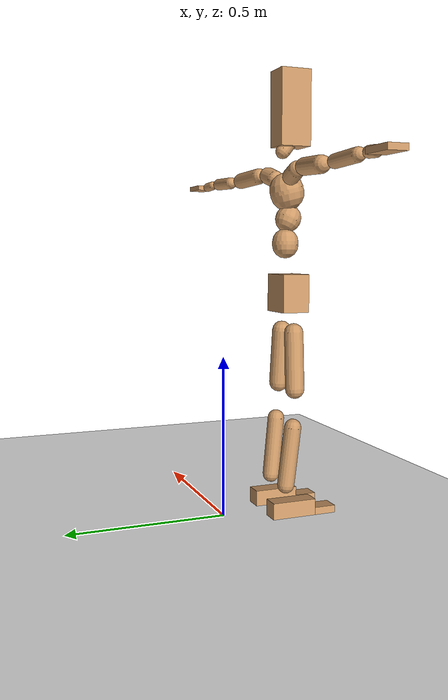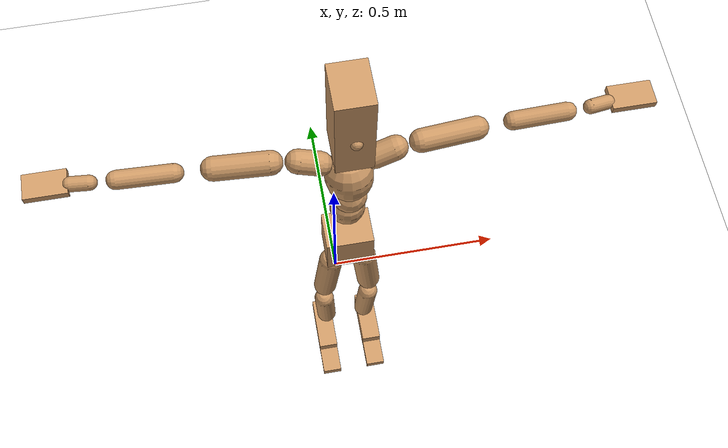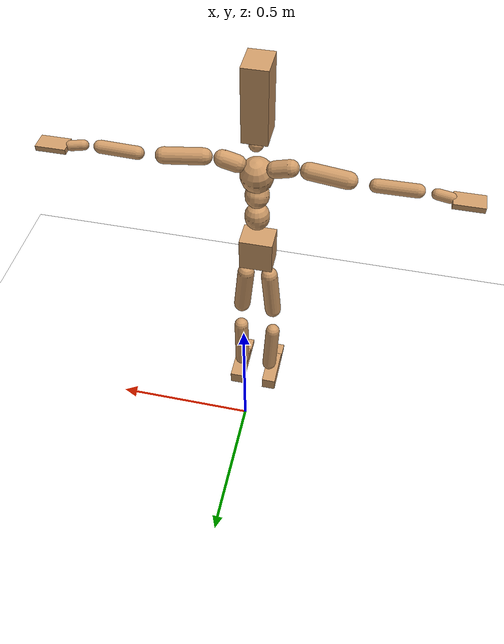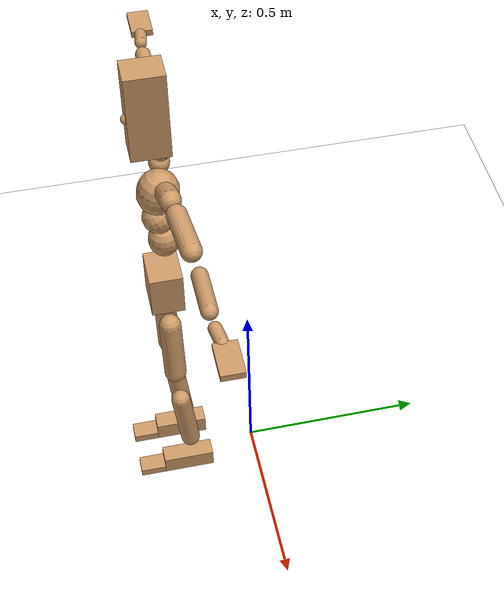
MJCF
<mujoco model="humanoid">
  <option integrator="implicitfast" />

  <visual>
    <global offwidth="1280" offheight="960" />
    <headlight active="1" ambient="0.34 0.34 0.34" diffuse="0.5 0.5 0.5" />
  </visual>

  <default>
    <joint damping="2" stiffness="2" armature="0.01" limited="true" solimplimit="0 .99 .01" />
    <geom condim="1" friction="0.7 0.005 0.0001" solimp=".99 .99 .003" solref="0.015 1" margin="0.001" rgba="0.8 0.6 .4 1" />
    <default class="smplcontact">
      <geom condim="3" friction="1. 0.005 0.0001" solref="0.015 1" solimp="0.98 0.98 0.001" priority="1" />
    </default>
    <default class="stiff_medium">
      <joint stiffness="10" />
    </default>
    <default class="stiff_medium_higher">
      <joint stiffness="50" />
    </default>
    <default class="stiff_high">
      <joint stiffness="100" />
    </default>
  </default>

  <asset>
    <texture type="skybox" builtin="gradient" rgb1="0.99 0.99 0.99" rgb2="0.608 0.828 0.892" width="100" />
    <texture builtin="flat" height="1278" mark="cross" markrgb="1 1 1" name="texgeom" random="0.01" rgb1="0.8 0.6 0.4" rgb2="0.8 0.6 0.4" type="cube" width="127" />
    <texture name="texplane" type="2d" builtin="checker" markrgb="1 1 1" rgb1="0.756 0.772 0.76" rgb2="0.6 0.6 0.6" width="100" height="100" />
    <material name="MatPlane" reflectance="0.5" texture="texplane" texrepeat="1 1" texuniform="true" />
    <material name="geom" texture="texgeom" texuniform="true" />
  </asset>

  <worldbody>
    <light name="tracking_light" pos="0 0 7" dir="0 0 -1" directional="true" cutoff="100" exponent="1" diffuse="1 1 1" specular="0.1 0.1 0.1" mode="trackcom" />
    <camera name="back" pos="0 3 2.4" xyaxes="-1 0 0 0 -1 2" mode="trackcom" />
    <camera name="side" pos="-3 0 2.4" xyaxes="0 -1 0 1 0 2" mode="trackcom" />
    <camera name="front_side" pos="-2.8 -2.8 0.8" xyaxes="0.5 -0.5 0 0.1 0.1 1" mode="trackcom" />
    <geom condim="3" name="floor" pos="0 0 0" rgba="1 1 1 1" size="100 100 .2" type="plane" material="MatPlane" />
    <body name="Pelvis" pos="-0.0018 -0.2233 0.707498" euler="90 0 0">
      <site name="Pelvis" size="0.01" />
      <freejoint name="Pelvis" />
      <geom type="box" pos="0 -0.0100444 -0.0029271" size="0.0568922 0.0599345 0.0441726" quat="1.0000 0.0000 0.0000 0.0000" density="3165.830099" name="Pelvis" />
      <body name="L_Hip" pos="0.0369879 -0.0758727 -0.00361896">
        <joint name="L_Hip_x" type="hinge" pos="0 0 0" axis="1 0 0" stiffness="10" range="-160.0 22.92" class="stiff_medium" damping="15" />
        <joint name="L_Hip_y" type="hinge" pos="0 0 0" axis="0 1 0" stiffness="10" range="-70.0 70.0" class="stiff_medium" damping="10" />
        <joint name="L_Hip_z" type="hinge" pos="0 0 0" axis="0 0 1" stiffness="10" range="-28.65 90.0" class="stiff_medium" damping="10" />
        <geom type="capsule" density="2040.816327" fromto="0.00526045 -0.0573959 -0.000688531 0.0209482 -0.229731 -0.00275472" size="0.0301781" name="L_Hip" />
        <body name="L_Knee" pos="0.0262086 -0.287127 -0.00344325">
          <joint name="L_Knee_x" type="hinge" pos="0 0 0" axis="1 0 0" range="-5.16 171.89" damping="8" />
          <joint name="L_Knee_y" type="hinge" pos="0 0 0" axis="0 1 0" range="-4.58 6.88" damping="8" />
          <joint name="L_Knee_z" type="hinge" pos="0 0 0" axis="0 0 1" range="-6.88 4.58" damping="8" />
          <geom type="capsule" density="1234.567901" fromto="-0.00207526 -0.0609119 -0.00667576 -0.00835034 -0.243655 -0.026802" size="0.0265469" name="L_Knee" />
          <body name="L_Ankle" pos="-0.0104256 -0.304567 -0.0334777">
            <joint name="L_Ankle_x" type="hinge" pos="0 0 0" axis="1 0 0" range="-45.84 45.84" class="stiff_medium" damping="6" />
            <joint name="L_Ankle_y" type="hinge" pos="0 0 0" axis="0 1 0" range="-74.48 22.92" class="stiff_medium" damping="3" />
            <joint name="L_Ankle_z" type="hinge" pos="0 0 0" axis="0 0 1" range="-4.58 4.58" class="stiff_medium" damping="6" />
            <geom type="box" pos="0.0124003 -0.0127196 0.0201893" size="0.0257053 0.0246941 0.0709127" quat="1.0000 0.0000 0.0000 0.0000" density="449.071558" name="L_Ankle" class="smplcontact" />
            <body name="L_Toe" pos="0.0140501 -0.0296968 0.099528">
              <joint name="L_Toe_x" type="hinge" pos="0 0 0" axis="1 0 0" range="-91.67 22.92" />
              <joint name="L_Toe_y" type="hinge" pos="0 0 0" axis="0 1 0" range="-4.58 4.58" />
              <joint name="L_Toe_z" type="hinge" pos="0 0 0" axis="0 0 1" range="-4.58 4.58" />
              <geom type="box" pos="-0.0015966 0.0029271 0.0206898" size="0.0254392 0.010644 0.0413796" quat="1.0000 0.0000 0.0000 0.0000" density="423.206892" name="L_Toe" class="smplcontact" />
            </body>
          </body>
        </body>
      </body>
      <body name="R_Hip" pos="-0.0360299 -0.0751256 -0.00228846">
        <joint name="R_Hip_x" type="hinge" pos="0 0 0" axis="1 0 0" stiffness="10" range="-160.0 22.92" class="stiff_medium" damping="15" />
        <joint name="R_Hip_y" type="hinge" pos="0 0 0" axis="0 1 0" stiffness="10" range="-70.0 70.0" class="stiff_medium" damping="10" />
        <joint name="R_Hip_z" type="hinge" pos="0 0 0" axis="0 0 1" stiffness="10" range="-90.0 28.65" class="stiff_medium" damping="10" />
        <geom type="capsule" density="2040.816327" fromto="-0.00587345 -0.0585441 -0.00136814 -0.0233978 -0.234246 -0.00542399" size="0.0297364" name="R_Hip" />
        <body name="R_Knee" pos="-0.0292712 -0.292791 -0.00679213">
          <joint name="R_Knee_x" type="hinge" pos="0 0 0" axis="1 0 0" range="-5.16 171.89" damping="8" />
          <joint name="R_Knee_y" type="hinge" pos="0 0 0" axis="0 1 0" range="-6.88 4.58" damping="8" />
          <joint name="R_Knee_z" type="hinge" pos="0 0 0" axis="0 0 1" range="-4.58 6.88" damping="8" />
          <geom type="capsule" density="1234.567901" fromto="0.00243097 -0.0609933 -0.00648759 0.00962436 -0.243889 -0.0258485" size="0.0265469" name="R_Knee" />
          <body name="R_Ankle" pos="0.0120553 -0.304882 -0.0323361">
            <joint name="R_Ankle_x" type="hinge" pos="0 0 0" axis="1 0 0" range="-45.84 45.84" class="stiff_medium" damping="6" />
            <joint name="R_Ankle_y" type="hinge" pos="0 0 0" axis="0 1 0" range="-22.92 74.48" class="stiff_medium" damping="3" />
            <joint name="R_Ankle_z" type="hinge" pos="0 0 0" axis="0 0 1" range="-4.58 4.58" class="stiff_medium" damping="6" />
            <geom type="box" pos="-0.0112826 -0.00926028 0.0213572" size="0.0257053 0.0254392 0.0721641" quat="1.0000 0.0000 0.0000 0.0000" density="434.700981" name="R_Ankle" class="smplcontact" />
            <body name="R_Toe" pos="-0.0135179 -0.0255988 0.102865">
              <joint name="R_Toe_x" type="hinge" pos="0 0 0" axis="1 0 0" range="-91.67 22.92" />
              <joint name="R_Toe_y" type="hinge" pos="0 0 0" axis="0 1 0" range="-4.58 4.58" />
              <joint name="R_Toe_z" type="hinge" pos="0 0 0" axis="0 0 1" range="-4.58 4.58" />
              <geom type="box" pos="0.00223524 0.0023949 0.0189379" size="0.0254924 0.0114955 0.0411294" quat="1.0000 0.0000 0.0000 0.0000" density="407.384095" name="R_Toe" class="smplcontact" />
            </body>
          </body>
        </body>
      </body>
      <body name="Torso" pos="-0.0013305 0.0904828 -0.0142097">
        <joint name="Torso_x" type="hinge" pos="0 0 0" axis="1 0 0" range="-25.78 57.3" class="stiff_medium" damping="15" />
        <joint name="Torso_y" type="hinge" pos="0 0 0" axis="0 1 0" range="-57.3 57.3" class="stiff_high" damping="20" />
        <joint name="Torso_z" type="hinge" pos="0 0 0" axis="0 0 1" range="-34.38 34.38" class="stiff_high" damping="20" />
        <geom type="capsule" density="2040.816327" fromto="0.00201358 0.0507794 0.000402715 0.00243115 0.0620538 0.00048623" size="0.0411723" name="Torso" />
        <body name="Spine" pos="0.00444583 0.112917 0.000889167">
          <joint name="Spine_x" type="hinge" pos="0 0 0" axis="1 0 0" stiffness="10" range="-25.78 57.3" class="stiff_medium" damping="15" />
          <joint name="Spine_y" type="hinge" pos="0 0 0" axis="0 1 0" stiffness="10" range="-57.3 57.3" class="stiff_high" damping="8" />
          <joint name="Spine_z" type="hinge" pos="0 0 0" axis="0 0 1" stiffness="20" range="-34.38 34.38" class="stiff_high" damping="12" />
          <geom type="capsule" density="2040.816327" fromto="0.000508786 0.0198448 0.00958772 0.0005923 0.0242711 0.0117591" size="0.0404227" name="Spine" />
          <body name="Chest" pos="0.00110109 0.0441159 0.0213468">
            <joint name="Chest_x" type="hinge" pos="0 0 0" axis="1 0 0" stiffness="10" range="-25.78 57.3" class="stiff_medium" damping="15" />
            <joint name="Chest_y" type="hinge" pos="0 0 0" axis="0 1 0" stiffness="10" range="-57.3 57.3" class="stiff_high" damping="8" />
            <joint name="Chest_z" type="hinge" pos="0 0 0" axis="0 0 1" stiffness="20" range="-34.38 34.38" class="stiff_high" damping="12" />
            <geom type="capsule" density="2040.816327" fromto="-0.000617094 0.0569346 -0.0145365 -0.000700608 0.0695452 -0.0177936" size="0.0536471" name="Chest" />
            <body name="Neck" pos="-0.0019178 0.177743 -0.0392973">
              <joint name="Neck_x" type="hinge" pos="0 0 0" axis="1 0 0" range="-28.65 57.3" class="stiff_medium_higher" damping="10" />
              <joint name="Neck_y" type="hinge" pos="0 0 0" axis="0 1 0" range="-40.11 40.11" class="stiff_medium_higher" damping="10" />
              <joint name="Neck_z" type="hinge" pos="0 0 0" axis="0 0 1" range="-40.11 40.11" class="stiff_medium_higher" damping="10" />
              <geom type="capsule" density="1000" fromto="0.000844591 0.0108498 0.0085864 0.00343082 0.0433862 0.0342818" size="0.0233216" name="Neck" />
              <body name="Head" pos="0.00432786 0.054223 0.0428044">
                <joint name="Head_x" type="hinge" pos="0 0 0" axis="1 0 0" range="-28.65 57.3" class="stiff_medium_higher" damping="2" />
                <joint name="Head_y" type="hinge" pos="0 0 0" axis="0 1 0" range="-40.11 40.11" class="stiff_medium_higher" damping="2" />
                <joint name="Head_z" type="hinge" pos="0 0 0" axis="0 0 1" range="-40.11 40.11" class="stiff_medium_higher" damping="2" />
                <geom type="box" pos="-0.00279678 0.0909887 -0.00772444" size="0.0403535 0.119864 0.0506084" quat="1.0000 0.0000 0.0000 0.0000" density="1018.069894" name="Head" />
                <geom type="capsule" name="nose" size="0.013318 0.006659" pos="0 0.0727079 0.033295" quat="1 0 0 0" mass="0" contype="0" conaffinity="0" />
              </body>
            </body>
            <body name="L_Thorax" pos="0.0419476 0.101682 -0.0276905">
              <joint name="L_Thorax_x" type="hinge" pos="0 0 0" axis="1 0 0" range="-10.89 4.58" class="stiff_medium_higher" damping="20" />
              <joint name="L_Thorax_y" type="hinge" pos="0 0 0" axis="0 1 0" range="-28.65 17.19" class="stiff_medium_higher" damping="20" />
              <joint name="L_Thorax_z" type="hinge" pos="0 0 0" axis="0 0 1" range="-31.51 40.11" class="stiff_medium_higher" damping="20" />
              <geom type="capsule" density="1000" fromto="0.0150176 0.00503336 -0.00147538 0.0600677 0.0201326 -0.00584838" size="0.0275609" name="L_Thorax" />
              <body name="L_Shoulder" pos="0.0750853 0.025166 -0.00732377">
                <joint name="L_Shoulder_x" type="hinge" pos="0 0 0" axis="1 0 0" range="-97.4 97.4" class="stiff_medium" damping="6" />
                <joint name="L_Shoulder_y" type="hinge" pos="0 0 0" axis="0 1 0" range="-108.86 80.21" class="stiff_medium" damping="6" />
                <joint name="L_Shoulder_z" type="hinge" pos="0 0 0" axis="0 0 1" range="-97.4 85.94" class="stiff_medium" damping="6" />
                <geom type="capsule" density="1000" fromto="0.0411799 -0.00204352 -0.00436295 0.164796 -0.00807356 -0.0174545" size="0.0262998" name="L_Shoulder" />
                <body name="L_Elbow" pos="0.205976 -0.0101171 -0.0218175">
                  <joint name="L_Elbow_x" type="hinge" pos="0 0 0" axis="1 0 0" range="-17.19 4.58" damping="5" />
                  <joint name="L_Elbow_y" type="hinge" pos="0 0 0" axis="0 1 0" range="-180.0 17.19" damping="5" />
                  <joint name="L_Elbow_z" type="hinge" pos="0 0 0" axis="0 0 1" range="-100.84 4.58" damping="5" />
                  <geom type="capsule" density="1000" fromto="0.0395127 0.00142748 -0.000168087 0.158209 0.00571199 -0.000723486" size="0.0206024" name="L_Elbow" />
                  <body name="L_Wrist" pos="0.197722 0.00713948 -0.000942445">
                    <joint name="L_Wrist_x" type="hinge" pos="0 0 0" axis="1 0 0" range="-180.0 22.92" />
                    <joint name="L_Wrist_y" type="hinge" pos="0 0 0" axis="0 1 0" range="-17.19 17.19" />
                    <joint name="L_Wrist_z" type="hinge" pos="0 0 0" axis="0 0 1" range="-22.92 22.92" />
                    <geom type="capsule" density="1000" fromto="0.0133287 -0.00127889 -0.00238012 0.0533174 -0.00516668 -0.00952097" size="0.0161767" name="L_Wrist" class="smplcontact" />
                    <body name="L_Hand" pos="0.0666439 -0.00649622 -0.0118498">
                      <joint name="L_Hand_x" type="hinge" pos="0 0 0" axis="1 0 0" range="-17.19 17.19" />
                      <joint name="L_Hand_y" type="hinge" pos="0 0 0" axis="0 1 0" range="-51.57 51.57" />
                      <joint name="L_Hand_z" type="hinge" pos="0 0 0" axis="0 0 1" range="-91.67 91.67" />
                      <geom type="box" pos="0.0409248 0.0005322 -0.00308676" size="0.0485619 0.00840876 0.0286324" quat="1.0000 0.0000 0.0000 0.0000" density="400.552564" name="L_Hand" class="smplcontact" />
                    </body>
                  </body>
                </body>
              </body>
            </body>
            <body name="R_Thorax" pos="-0.0440363 0.09994 -0.0300508">
              <joint name="R_Thorax_x" type="hinge" pos="0 0 0" axis="1 0 0" range="-10.89 4.58" class="stiff_medium_higher" damping="20" />
              <joint name="R_Thorax_y" type="hinge" pos="0 0 0" axis="0 1 0" range="-17.19 28.65" class="stiff_medium_higher" damping="20" />
              <joint name="R_Thorax_z" type="hinge" pos="0 0 0" axis="0 0 1" range="-40.11 31.51" class="stiff_medium_higher" damping="20" />
              <geom type="capsule" density="1000" fromto="-0.015841 0.00536283 -0.00149496 -0.0633664 0.0214522 -0.00603298" size="0.0270319" name="R_Thorax" />
              <body name="R_Shoulder" pos="-0.0792163 0.0268709 -0.00752879">
                <joint name="R_Shoulder_x" type="hinge" pos="0 0 0" axis="1 0 0" range="-97.4 97.4" class="stiff_medium" damping="6" />
                <joint name="R_Shoulder_y" type="hinge" pos="0 0 0" axis="0 1 0" range="-80.21 108.86" class="stiff_medium" damping="6" />
                <joint name="R_Shoulder_z" type="hinge" pos="0 0 0" axis="0 0 1" range="-85.94 97.4" class="stiff_medium" damping="6" />
                <geom type="capsule" density="1000" fromto="-0.0402282 -0.00213184 -0.00340077 -0.161067 -0.00847926 -0.0135566" size="0.027012" name="R_Shoulder" />
                <body name="R_Elbow" pos="-0.201294 -0.0105602 -0.0169573">
                  <joint name="R_Elbow_x" type="hinge" pos="0 0 0" axis="1 0 0" range="-17.19 4.58" damping="5" />
                  <joint name="R_Elbow_y" type="hinge" pos="0 0 0" axis="0 1 0" range="-17.19 180.0" damping="5" />
                  <joint name="R_Elbow_z" type="hinge" pos="0 0 0" axis="0 0 1" range="-4.58 100.84" damping="5" />
                  <geom type="capsule" density="1000" fromto="-0.0405447 0.00125109 -0.000873191 -0.162018 0.00490085 -0.0034915" size="0.020755" name="R_Elbow" />
                  <body name="R_Wrist" pos="-0.202564 0.00615196 -0.00441557">
                    <joint name="R_Wrist_x" type="hinge" pos="0 0 0" axis="1 0 0" range="-180.0 22.92" />
                    <joint name="R_Wrist_y" type="hinge" pos="0 0 0" axis="0 1 0" range="-17.19 17.19" />
                    <joint name="R_Wrist_z" type="hinge" pos="0 0 0" axis="0 0 1" range="-22.92 22.92" />
                    <geom type="capsule" density="1000" fromto="-0.0134096 -0.000960959 -0.00165563 -0.0537157 -0.00389664 -0.00657488" size="0.0165836" name="R_Wrist" class="smplcontact" />
                    <body name="R_Hand" pos="-0.0671218 -0.00485735 -0.00817922">
                      <joint name="R_Hand_x" type="hinge" pos="0 0 0" axis="1 0 0" range="-17.19 17.19" />
                      <joint name="R_Hand_y" type="hinge" pos="0 0 0" axis="0 1 0" range="-51.57 51.57" />
                      <joint name="R_Hand_z" type="hinge" pos="0 0 0" axis="0 0 1" range="-91.67 91.67" />
                      <geom type="box" pos="-0.0383514 -0.00047898 -0.00420438" size="0.0472337 0.00872808 0.0290581" quat="1.0000 0.0000 0.0000 0.0000" density="403.679611" name="R_Hand" class="smplcontact" />
                    </body>
                  </body>
                </body>
              </body>
            </body>
          </body>
        </body>
      </body>
    </body>
  </worldbody>
  <actuator>
    <general name="L_Hip_x" joint="L_Hip_x" biastype="affine" gainprm="287.33006409732246" biasprm="-215.3247604770444 -180 -2.0" ctrllimited="true" ctrlrange="-1 1" forcerange="-360 360" />
    <general name="L_Hip_y" joint="L_Hip_y" biastype="affine" gainprm="219.9114857512855" biasprm="0.0 -180 -2.0" ctrllimited="true" ctrlrange="-1 1" forcerange="-360 360" />
    <general name="L_Hip_z" joint="L_Hip_z" biastype="affine" gainprm="186.3749841742145" biasprm="96.3683546488669 -180 -2.0" ctrllimited="true" ctrlrange="-1 1" forcerange="-360 360" />
    <general name="L_Knee_x" joint="L_Knee_x" biastype="affine" gainprm="278.10948965903646" biasprm="261.8988715665131 -180 -2.0" ctrllimited="true" ctrlrange="-1 1" forcerange="-360 360" />
    <general name="L_Knee_y" joint="L_Knee_y" biastype="affine" gainprm="18.001325905069514" biasprm="3.612831551628262 -180 -2.0" ctrllimited="true" ctrlrange="-1 1" forcerange="-360 360" />
    <general name="L_Knee_z" joint="L_Knee_z" biastype="affine" gainprm="18.001325905069514" biasprm="-3.612831551628262 -180 -2.0" ctrllimited="true" ctrlrange="-1 1" forcerange="-360 360" />
    <general name="L_Ankle_x" joint="L_Ankle_x" biastype="affine" gainprm="72.00530362027807" biasprm="0.0 -90 -2.0" ctrllimited="true" ctrlrange="-1 1" forcerange="-180 180" />
    <general name="L_Ankle_y" joint="L_Ankle_y" biastype="affine" gainprm="76.49778111491148" biasprm="-40.49512930477244 -90 -2.0" ctrllimited="true" ctrlrange="-1 1" forcerange="-180 180" />
    <general name="L_Ankle_z" joint="L_Ankle_z" biastype="affine" gainprm="7.1942471767206255" biasprm="0.0 -90 -2.0" ctrllimited="true" ctrlrange="-1 1" forcerange="-180 180" />
    <general name="L_Toe_x" joint="L_Toe_x" biastype="affine" gainprm="71.99902043497087" biasprm="-43.19689898685965 -72 -0.8" ctrllimited="true" ctrlrange="-1 1" forcerange="-144 144" />
    <general name="L_Toe_y" joint="L_Toe_y" biastype="affine" gainprm="5.755397741376501" biasprm="0.0 -72 -0.8" ctrllimited="true" ctrlrange="-1 1" forcerange="-144 144" />
    <general name="L_Toe_z" joint="L_Toe_z" biastype="affine" gainprm="5.755397741376501" biasprm="0.0 -72 -0.8" ctrllimited="true" ctrlrange="-1 1" forcerange="-144 144" />
    <general name="R_Hip_x" joint="R_Hip_x" biastype="affine" gainprm="287.33006409732246" biasprm="-215.3247604770444 -180 -2.0" ctrllimited="true" ctrlrange="-1 1" forcerange="-360 360" />
    <general name="R_Hip_y" joint="R_Hip_y" biastype="affine" gainprm="219.9114857512855" biasprm="0.0 -180 -2.0" ctrllimited="true" ctrlrange="-1 1" forcerange="-360 360" />
    <general name="R_Hip_z" joint="R_Hip_z" biastype="affine" gainprm="186.3749841742145" biasprm="-96.3683546488669 -180 -2.0" ctrllimited="true" ctrlrange="-1 1" forcerange="-360 360" />
    <general name="R_Knee_x" joint="R_Knee_x" biastype="affine" gainprm="278.10948965903646" biasprm="261.8988715665131 -180 -2.0" ctrllimited="true" ctrlrange="-1 1" forcerange="-360 360" />
    <general name="R_Knee_y" joint="R_Knee_y" biastype="affine" gainprm="18.001325905069514" biasprm="-3.612831551628262 -180 -2.0" ctrllimited="true" ctrlrange="-1 1" forcerange="-360 360" />
    <general name="R_Knee_z" joint="R_Knee_z" biastype="affine" gainprm="18.001325905069514" biasprm="3.612831551628262 -180 -2.0" ctrllimited="true" ctrlrange="-1 1" forcerange="-360 360" />
    <general name="R_Ankle_x" joint="R_Ankle_x" biastype="affine" gainprm="72.00530362027807" biasprm="0.0 -90 -2.0" ctrllimited="true" ctrlrange="-1 1" forcerange="-180 180" />
    <general name="R_Ankle_y" joint="R_Ankle_y" biastype="affine" gainprm="76.49778111491148" biasprm="40.49512930477244 -90 -2.0" ctrllimited="true" ctrlrange="-1 1" forcerange="-180 180" />
    <general name="R_Ankle_z" joint="R_Ankle_z" biastype="affine" gainprm="7.1942471767206255" biasprm="0.0 -90 -2.0" ctrllimited="true" ctrlrange="-1 1" forcerange="-180 180" />
    <general name="R_Toe_x" joint="R_Toe_x" biastype="affine" gainprm="71.99902043497087" biasprm="-43.19689898685965 -72 -0.8" ctrllimited="true" ctrlrange="-1 1" forcerange="-144 144" />
    <general name="R_Toe_y" joint="R_Toe_y" biastype="affine" gainprm="5.755397741376501" biasprm="0.0 -72 -0.8" ctrllimited="true" ctrlrange="-1 1" forcerange="-144 144" />
    <general name="R_Toe_z" joint="R_Toe_z" biastype="affine" gainprm="5.755397741376501" biasprm="0.0 -72 -0.8" ctrllimited="true" ctrlrange="-1 1" forcerange="-144 144" />
    <general name="Torso_x" joint="Torso_x" biastype="affine" gainprm="174.00234510682668" biasprm="66.0153336274335 -240 -4.0" ctrllimited="true" ctrlrange="-1 1" forcerange="-360 360" />
    <general name="Torso_y" joint="Torso_y" biastype="affine" gainprm="240.0176787342602" biasprm="0.0 -240 -4.0" ctrllimited="true" ctrlrange="-1 1" forcerange="-360 360" />
    <general name="Torso_z" joint="Torso_z" biastype="affine" gainprm="144.01060724055614" biasprm="0.0 -240 -4.0" ctrllimited="true" ctrlrange="-1 1" forcerange="-360 360" />
    <general name="Spine_x" joint="Spine_x" biastype="affine" gainprm="174.00234510682668" biasprm="66.0153336274335 -240 -4.0" ctrllimited="true" ctrlrange="-1 1" forcerange="-360 360" />
    <general name="Spine_y" joint="Spine_y" biastype="affine" gainprm="240.0176787342602" biasprm="0.0 -240 -4.0" ctrllimited="true" ctrlrange="-1 1" forcerange="-360 360" />
    <general name="Spine_z" joint="Spine_z" biastype="affine" gainprm="144.01060724055614" biasprm="0.0 -240 -4.0" ctrllimited="true" ctrlrange="-1 1" forcerange="-360 360" />
    <general name="Chest_x" joint="Chest_x" biastype="affine" gainprm="174.00234510682668" biasprm="66.0153336274335 -240 -4.0" ctrllimited="true" ctrlrange="-1 1" forcerange="-360 360" />
    <general name="Chest_y" joint="Chest_y" biastype="affine" gainprm="240.0176787342602" biasprm="0.0 -240 -4.0" ctrllimited="true" ctrlrange="-1 1" forcerange="-360 360" />
    <general name="Chest_z" joint="Chest_z" biastype="affine" gainprm="144.01060724055614" biasprm="0.0 -240 -4.0" ctrllimited="true" ctrlrange="-1 1" forcerange="-360 360" />
    <general name="Neck_x" joint="Neck_x" biastype="affine" gainprm="27.00198885760427" biasprm="9.000662952534757 -36 -0.8" ctrllimited="true" ctrlrange="-1 1" forcerange="-72 72" />
    <general name="Neck_y" joint="Neck_y" biastype="affine" gainprm="25.20185626709732" biasprm="0.0 -36 -0.8" ctrllimited="true" ctrlrange="-1 1" forcerange="-72 72" />
    <general name="Neck_z" joint="Neck_z" biastype="affine" gainprm="25.20185626709732" biasprm="0.0 -36 -0.8" ctrllimited="true" ctrlrange="-1 1" forcerange="-72 72" />
    <general name="Head_x" joint="Head_x" biastype="affine" gainprm="18.001325905069514" biasprm="6.000441968356505 -24 -0.8" ctrllimited="true" ctrlrange="-1 1" forcerange="-48 48" />
    <general name="Head_y" joint="Head_y" biastype="affine" gainprm="16.801237511398213" biasprm="0.0 -24 -0.8" ctrllimited="true" ctrlrange="-1 1" forcerange="-48 48" />
    <general name="Head_z" joint="Head_z" biastype="affine" gainprm="16.801237511398213" biasprm="0.0 -24 -0.8" ctrllimited="true" ctrlrange="-1 1" forcerange="-48 48" />
    <general name="L_Thorax_x" joint="L_Thorax_x" biastype="affine" gainprm="16.200146117011364" biasprm="-6.6078165480505335 -120 -1.6" ctrllimited="true" ctrlrange="-1 1" forcerange="-240 240" />
    <general name="L_Thorax_y" joint="L_Thorax_y" biastype="affine" gainprm="48.00353574685204" biasprm="-12.00088393671301 -120 -1.6" ctrllimited="true" ctrlrange="-1 1" forcerange="-240 240" />
    <general name="L_Thorax_z" joint="L_Thorax_z" biastype="affine" gainprm="75.00028861670033" biasprm="9.00589894029074 -120 -1.6" ctrllimited="true" ctrlrange="-1 1" forcerange="-240 240" />
    <general name="L_Shoulder_x" joint="L_Shoulder_x" biastype="affine" gainprm="81.5976331892389" biasprm="0.0 -48 -1.6" ctrllimited="true" ctrlrange="-1 1" forcerange="-96 96" />
    <general name="L_Shoulder_y" joint="L_Shoulder_y" biastype="affine" gainprm="79.19745640189629" biasprm="-12.00088393671301 -48 -1.6" ctrllimited="true" ctrlrange="-1 1" forcerange="-96 96" />
    <general name="L_Shoulder_z" joint="L_Shoulder_z" biastype="affine" gainprm="76.79727961455369" biasprm="-4.800353574685214 -48 -1.6" ctrllimited="true" ctrlrange="-1 1" forcerange="-96 96" />
    <general name="L_Elbow_x" joint="L_Elbow_x" biastype="affine" gainprm="13.67849441372996" biasprm="-7.923096672353461 -72 -0.8" ctrllimited="true" ctrlrange="-1 1" forcerange="-144 144" />
    <general name="L_Elbow_y" joint="L_Elbow_y" biastype="affine" gainprm="123.89813107227425" biasprm="-102.29653998619085 -72 -0.8" ctrllimited="true" ctrlrange="-1 1" forcerange="-144 144" />
    <general name="L_Elbow_z" joint="L_Elbow_z" biastype="affine" gainprm="66.23733950828719" biasprm="-60.4819417669107 -72 -0.8" ctrllimited="true" ctrlrange="-1 1" forcerange="-144 144" />
    <general name="L_Wrist_x" joint="L_Wrist_x" biastype="affine" gainprm="21.24973270888136" biasprm="-16.449379134196157 -12 -0.8" ctrllimited="true" ctrlrange="-1 1" forcerange="-24 24" />
    <general name="L_Wrist_y" joint="L_Wrist_y" biastype="affine" gainprm="3.6002651810139037" biasprm="0.0 -12 -0.8" ctrllimited="true" ctrlrange="-1 1" forcerange="-24 24" />
    <general name="L_Wrist_z" joint="L_Wrist_z" biastype="affine" gainprm="4.800353574685205" biasprm="0.0 -12 -0.8" ctrllimited="true" ctrlrange="-1 1" forcerange="-24 24" />
    <general name="L_Hand_x" joint="L_Hand_x" biastype="affine" gainprm="3.6002651810139037" biasprm="0.0 -12 -0.8" ctrllimited="true" ctrlrange="-1 1" forcerange="-24 24" />
    <general name="L_Hand_y" joint="L_Hand_y" biastype="affine" gainprm="10.800795543041708" biasprm="0.0 -12 -0.8" ctrllimited="true" ctrlrange="-1 1" forcerange="-24 24" />
    <general name="L_Hand_z" joint="L_Hand_z" biastype="affine" gainprm="19.199319903638422" biasprm="0.0 -12 -0.8" ctrllimited="true" ctrlrange="-1 1" forcerange="-24 24" />
    <general name="R_Thorax_x" joint="R_Thorax_x" biastype="affine" gainprm="16.200146117011364" biasprm="-6.6078165480505335 -120 -1.6" ctrllimited="true" ctrlrange="-1 1" forcerange="-240 240" />
    <general name="R_Thorax_y" joint="R_Thorax_y" biastype="affine" gainprm="48.00353574685204" biasprm="12.000883936713002 -120 -1.6" ctrllimited="true" ctrlrange="-1 1" forcerange="-240 240" />
    <general name="R_Thorax_z" joint="R_Thorax_z" biastype="affine" gainprm="75.00028861670033" biasprm="-9.00589894029074 -120 -1.6" ctrllimited="true" ctrlrange="-1 1" forcerange="-240 240" />
    <general name="R_Shoulder_x" joint="R_Shoulder_x" biastype="affine" gainprm="81.5976331892389" biasprm="0.0 -48 -1.6" ctrllimited="true" ctrlrange="-1 1" forcerange="-96 96" />
    <general name="R_Shoulder_y" joint="R_Shoulder_y" biastype="affine" gainprm="79.19745640189629" biasprm="12.00088393671301 -48 -1.6" ctrllimited="true" ctrlrange="-1 1" forcerange="-96 96" />
    <general name="R_Shoulder_z" joint="R_Shoulder_z" biastype="affine" gainprm="76.79727961455369" biasprm="4.800353574685204 -48 -1.6" ctrllimited="true" ctrlrange="-1 1" forcerange="-96 96" />
    <general name="R_Elbow_x" joint="R_Elbow_x" biastype="affine" gainprm="13.67849441372996" biasprm="-7.923096672353461 -72 -0.8" ctrllimited="true" ctrlrange="-1 1" forcerange="-144 144" />
    <general name="R_Elbow_y" joint="R_Elbow_y" biastype="affine" gainprm="123.89813107227425" biasprm="102.29653998619085 -72 -0.8" ctrllimited="true" ctrlrange="-1 1" forcerange="-144 144" />
    <general name="R_Elbow_z" joint="R_Elbow_z" biastype="affine" gainprm="66.23733950828719" biasprm="60.481941766910694 -72 -0.8" ctrllimited="true" ctrlrange="-1 1" forcerange="-144 144" />
    <general name="R_Wrist_x" joint="R_Wrist_x" biastype="affine" gainprm="21.24973270888136" biasprm="-16.449379134196157 -12 -0.8" ctrllimited="true" ctrlrange="-1 1" forcerange="-24 24" />
    <general name="R_Wrist_y" joint="R_Wrist_y" biastype="affine" gainprm="3.6002651810139037" biasprm="0.0 -12 -0.8" ctrllimited="true" ctrlrange="-1 1" forcerange="-24 24" />
    <general name="R_Wrist_z" joint="R_Wrist_z" biastype="affine" gainprm="4.800353574685205" biasprm="0.0 -12 -0.8" ctrllimited="true" ctrlrange="-1 1" forcerange="-24 24" />
    <general name="R_Hand_x" joint="R_Hand_x" biastype="affine" gainprm="3.6002651810139037" biasprm="0.0 -12 -0.8" ctrllimited="true" ctrlrange="-1 1" forcerange="-24 24" />
    <general name="R_Hand_y" joint="R_Hand_y" biastype="affine" gainprm="10.800795543041708" biasprm="0.0 -12 -0.8" ctrllimited="true" ctrlrange="-1 1" forcerange="-24 24" />
    <general name="R_Hand_z" joint="R_Hand_z" biastype="affine" gainprm="19.199319903638422" biasprm="0.0 -12 -0.8" ctrllimited="true" ctrlrange="-1 1" forcerange="-24 24" />
  </actuator>
  <contact>
    <exclude body1="Torso" body2="Chest" />
    <exclude body1="Head" body2="Chest" />
    <exclude body1="R_Knee" body2="R_Toe" />
    <exclude body1="R_Knee" body2="L_Ankle" />
    <exclude body1="R_Knee" body2="L_Toe" />
    <exclude body1="L_Knee" body2="L_Toe" />
    <exclude body1="L_Knee" body2="R_Ankle" />
    <exclude body1="L_Knee" body2="R_Toe" />
    <exclude body1="L_Shoulder" body2="Chest" />
    <exclude body1="R_Shoulder" body2="Chest" />
  </contact>
  <sensor>
    <framelinvel name="sensor_Pelvis_framelinvel" objtype="xbody" objname="Pelvis" />
    <framelinvel name="sensor_L_Hip_framelinvel" objtype="xbody" objname="L_Hip" />
    <framelinvel name="sensor_L_Knee_framelinvel" objtype="xbody" objname="L_Knee" />
    <framelinvel name="sensor_L_Ankle_framelinvel" objtype="xbody" objname="L_Ankle" />
    <framelinvel name="sensor_L_Toe_framelinvel" objtype="xbody" objname="L_Toe" />
    <framelinvel name="sensor_R_Hip_framelinvel" objtype="xbody" objname="R_Hip" />
    <framelinvel name="sensor_R_Knee_framelinvel" objtype="xbody" objname="R_Knee" />
    <framelinvel name="sensor_R_Ankle_framelinvel" objtype="xbody" objname="R_Ankle" />
    <framelinvel name="sensor_R_Toe_framelinvel" objtype="xbody" objname="R_Toe" />
    <framelinvel name="sensor_Torso_framelinvel" objtype="xbody" objname="Torso" />
    <framelinvel name="sensor_Spine_framelinvel" objtype="xbody" objname="Spine" />
    <framelinvel name="sensor_Chest_framelinvel" objtype="xbody" objname="Chest" />
    <framelinvel name="sensor_Neck_framelinvel" objtype="xbody" objname="Neck" />
    <framelinvel name="sensor_Head_framelinvel" objtype="xbody" objname="Head" />
    <framelinvel name="sensor_L_Thorax_framelinvel" objtype="xbody" objname="L_Thorax" />
    <framelinvel name="sensor_L_Shoulder_framelinvel" objtype="xbody" objname="L_Shoulder" />
    <framelinvel name="sensor_L_Elbow_framelinvel" objtype="xbody" objname="L_Elbow" />
    <framelinvel name="sensor_L_Wrist_framelinvel" objtype="xbody" objname="L_Wrist" />
    <framelinvel name="sensor_L_Hand_framelinvel" objtype="xbody" objname="L_Hand" />
    <framelinvel name="sensor_R_Thorax_framelinvel" objtype="xbody" objname="R_Thorax" />
    <framelinvel name="sensor_R_Shoulder_framelinvel" objtype="xbody" objname="R_Shoulder" />
    <framelinvel name="sensor_R_Elbow_framelinvel" objtype="xbody" objname="R_Elbow" />
    <framelinvel name="sensor_R_Wrist_framelinvel" objtype="xbody" objname="R_Wrist" />
    <framelinvel name="sensor_R_Hand_framelinvel" objtype="xbody" objname="R_Hand" />
    <frameangvel name="sensor_Pelvis_frameangvel" objtype="xbody" objname="Pelvis" />
    <frameangvel name="sensor_L_Hip_frameangvel" objtype="xbody" objname="L_Hip" />
    <frameangvel name="sensor_L_Knee_frameangvel" objtype="xbody" objname="L_Knee" />
    <frameangvel name="sensor_L_Ankle_frameangvel" objtype="xbody" objname="L_Ankle" />
    <frameangvel name="sensor_L_Toe_frameangvel" objtype="xbody" objname="L_Toe" />
    <frameangvel name="sensor_R_Hip_frameangvel" objtype="xbody" objname="R_Hip" />
    <frameangvel name="sensor_R_Knee_frameangvel" objtype="xbody" objname="R_Knee" />
    <frameangvel name="sensor_R_Ankle_frameangvel" objtype="xbody" objname="R_Ankle" />
    <frameangvel name="sensor_R_Toe_frameangvel" objtype="xbody" objname="R_Toe" />
    <frameangvel name="sensor_Torso_frameangvel" objtype="xbody" objname="Torso" />
    <frameangvel name="sensor_Spine_frameangvel" objtype="xbody" objname="Spine" />
    <frameangvel name="sensor_Chest_frameangvel" objtype="xbody" objname="Chest" />
    <frameangvel name="sensor_Neck_frameangvel" objtype="xbody" objname="Neck" />
    <frameangvel name="sensor_Head_frameangvel" objtype="xbody" objname="Head" />
    <frameangvel name="sensor_L_Thorax_frameangvel" objtype="xbody" objname="L_Thorax" />
    <frameangvel name="sensor_L_Shoulder_frameangvel" objtype="xbody" objname="L_Shoulder" />
    <frameangvel name="sensor_L_Elbow_frameangvel" objtype="xbody" objname="L_Elbow" />
    <frameangvel name="sensor_L_Wrist_frameangvel" objtype="xbody" objname="L_Wrist" />
    <frameangvel name="sensor_L_Hand_frameangvel" objtype="xbody" objname="L_Hand" />
    <frameangvel name="sensor_R_Thorax_frameangvel" objtype="xbody" objname="R_Thorax" />
    <frameangvel name="sensor_R_Shoulder_frameangvel" objtype="xbody" objname="R_Shoulder" />
    <frameangvel name="sensor_R_Elbow_frameangvel" objtype="xbody" objname="R_Elbow" />
    <frameangvel name="sensor_R_Wrist_frameangvel" objtype="xbody" objname="R_Wrist" />
    <frameangvel name="sensor_R_Hand_frameangvel" objtype="xbody" objname="R_Hand" />
    <subtreelinvel name="Chest_subtreelinvel" body="Chest" />
    <gyro name="Pelvis_gyro" site="Pelvis" />
  </sensor>
</mujoco>
